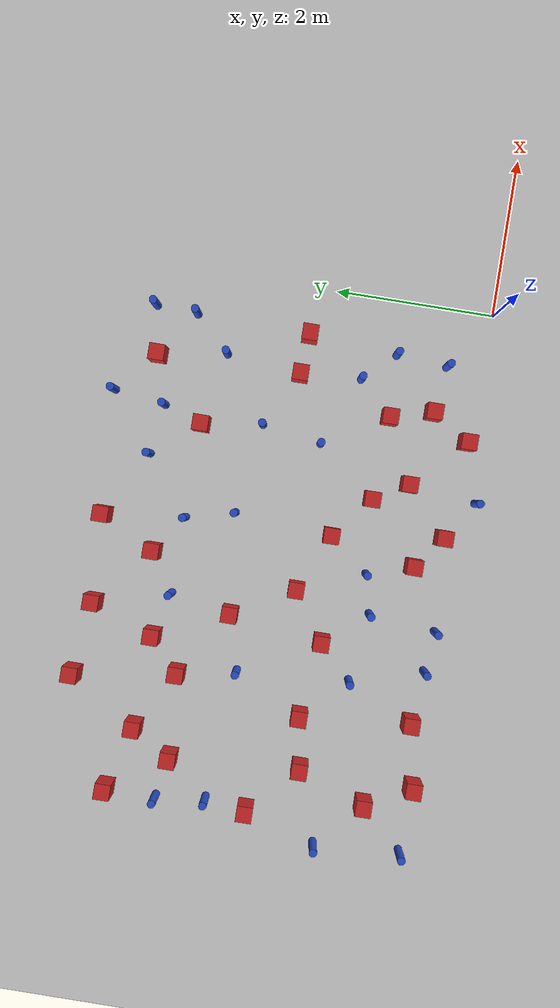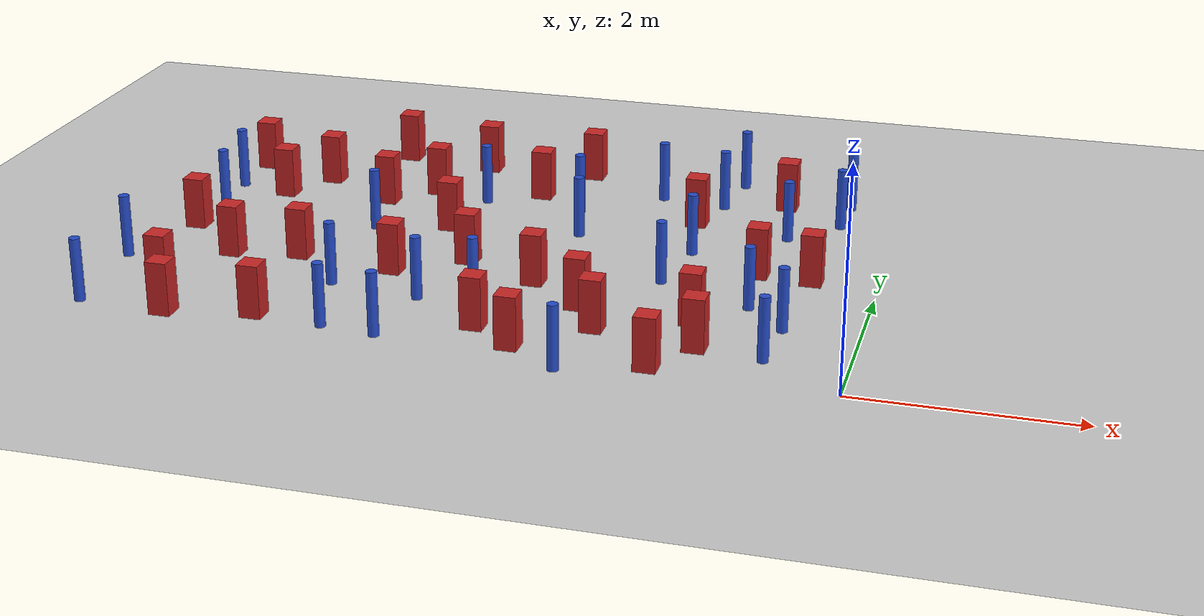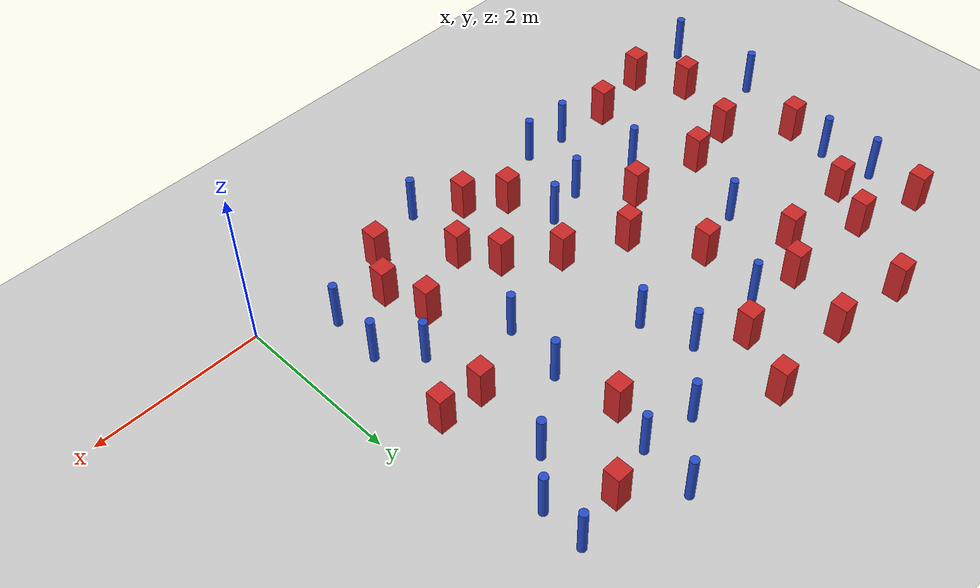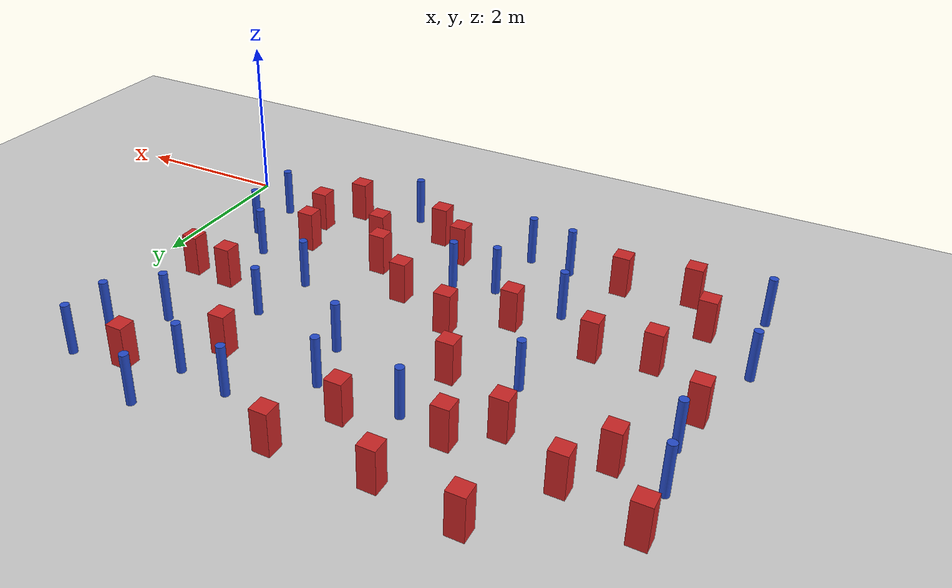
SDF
<sdf version="1.6">
 <world name="default">
  <model name="ground_plane">
   <static>1</static>
   <link name="link">
    <collision name="collision">
     <geometry><plane><normal>0 0 1</normal><size>100 100</size></plane></geometry>
     <surface><friction><ode><mu>100</mu><mu2>50</mu2></ode></friction></surface>
    </collision>
    <visual name="visual">
     <cast_shadows>0</cast_shadows>
     <geometry><plane><normal>0 0 1</normal><size>100 100</size></plane></geometry>
     <material>
      <ambient>1.0 1.0 1.0 1.0</ambient>
      <diffuse>0.8 0.8 0.8 1.0</diffuse>
      <specular>0.01 0.01 0.01 1.000000</specular>
     </material>
    </visual>
   </link>
  </model>
  <model name="square_post_obstacle20">
   <static>true</static>
   <pose>-2.53346879685 1.15611604299 1.91545236811e-07 -7.35059704564e-06 1.12565212e-07 2.39332434364e-05</pose>
   <link name="link">
    <pose>0 0 0.25 0 -0 0</pose>
    <inertial>
     <mass>100</mass>
     <inertia>
      <ixx>0.166667</ixx>
      <ixy>0</ixy>
      <ixz>0</ixz>
      <iyy>0.166667</iyy>
      <iyz>0</iyz>
      <izz>0.166667</izz>
     </inertia>
    </inertial>
    <collision name="collision"><geometry><box><size>.2 .2 .5</size></box></geometry></collision>
    <visual name="visual">
     <geometry><box><size>.2 .2 .5</size></box></geometry>
     <material>
      <script><name>Gazebo/Red</name><uri>file://media/materials/scripts/gazebo.material</uri></script>
     </material>
    </visual>
   </link>
  </model>
  <model name="pole_obstacle17">
   <static>true</static>
   <pose>-4.93952085252 2.49353234793 7.38925637345e-09 -8.47170692798e-08 1.24976764937e-08 -1.74513093023e-07</pose>
   <link name="link">
    <pose>0 0 0.3 0 -0 0</pose>
    <inertial>
     <mass>1</mass>
     <inertia><ixx>0.145833</ixx><ixy>0</ixy><ixz>0</ixz><iyy>0.145833</iyy><iyz>0</iyz><izz>0.125</izz></inertia>
    </inertial>
    <collision name="collision">
     <geometry><cylinder><radius>0.05</radius><length>.6</length></cylinder></geometry>
    </collision>
    <visual name="visual">
     <geometry><cylinder><radius>0.05</radius><length>.6</length></cylinder></geometry>
     <material>
      <script><name>Gazebo/Blue</name><uri>file://media/materials/scripts/gazebo.material</uri></script>
     </material>
    </visual>
   </link>
  </model>
  <model name="pole_obstacle18">
   <static>true</static>
   <pose>-0.682456190744 1.12774905291 7.38925637345e-09 -8.47170692799e-08 1.24976765033e-08 -1.7451309302e-07</pose>
   <link name="link">
    <pose>0 0 0.3 0 -0 0</pose>
    <inertial>
     <mass>1</mass>
     <inertia><ixx>0.145833</ixx><ixy>0</ixy><ixz>0</ixz><iyy>0.145833</iyy><iyz>0</iyz><izz>0.125</izz></inertia>
    </inertial>
    <collision name="collision">
     <geometry><cylinder><radius>0.05</radius><length>.6</length></cylinder></geometry>
    </collision>
    <visual name="visual">
     <geometry><cylinder><radius>0.05</radius><length>.6</length></cylinder></geometry>
     <material>
      <script><name>Gazebo/Blue</name><uri>file://media/materials/scripts/gazebo.material</uri></script>
     </material>
    </visual>
   </link>
  </model>
  <model name="pole_obstacle22">
   <static>true</static>
   <pose>-3.13177858768 3.44141593846 7.38925637345e-09 -8.47170692798e-08 1.24976764939e-08 -1.74513093025e-07</pose>
   <link name="link">
    <pose>0 0 0.3 0 -0 0</pose>
    <inertial>
     <mass>1</mass>
     <inertia><ixx>0.145833</ixx><ixy>0</ixy><ixz>0</ixz><iyy>0.145833</iyy><iyz>0</iyz><izz>0.125</izz></inertia>
    </inertial>
    <collision name="collision">
     <geometry><cylinder><radius>0.05</radius><length>.6</length></cylinder></geometry>
    </collision>
    <visual name="visual">
     <geometry><cylinder><radius>0.05</radius><length>.6</length></cylinder></geometry>
     <material>
      <script><name>Gazebo/Blue</name><uri>file://media/materials/scripts/gazebo.material</uri></script>
     </material>
    </visual>
   </link>
  </model>
  <model name="square_post_obstacle32">
   <static>true</static>
   <pose>-5.28289414419 4.52706465179 1.91545236811e-07 -7.35059704564e-06 1.12565212e-07 2.39332434364e-05</pose>
   <link name="link">
    <pose>0 0 0.25 0 -0 0</pose>
    <inertial>
     <mass>100</mass>
     <inertia>
      <ixx>0.166667</ixx>
      <ixy>0</ixy>
      <ixz>0</ixz>
      <iyy>0.166667</iyy>
      <iyz>0</iyz>
      <izz>0.166667</izz>
     </inertia>
    </inertial>
    <collision name="collision"><geometry><box><size>.2 .2 .5</size></box></geometry></collision>
    <visual name="visual">
     <geometry><box><size>.2 .2 .5</size></box></geometry>
     <material>
      <script><name>Gazebo/Red</name><uri>file://media/materials/scripts/gazebo.material</uri></script>
     </material>
    </visual>
   </link>
  </model>
  <model name="square_post_obstacle34">
   <static>true</static>
   <pose>-6.63710180028 2.10896019173 1.91545236811e-07 -7.35059704564e-06 1.12565212e-07 2.39332434364e-05</pose>
   <link name="link">
    <pose>0 0 0.25 0 -0 0</pose>
    <inertial>
     <mass>100</mass>
     <inertia>
      <ixx>0.166667</ixx>
      <ixy>0</ixy>
      <ixz>0</ixz>
      <iyy>0.166667</iyy>
      <iyz>0</iyz>
      <izz>0.166667</izz>
     </inertia>
    </inertial>
    <collision name="collision"><geometry><box><size>.2 .2 .5</size></box></geometry></collision>
    <visual name="visual">
     <geometry><box><size>.2 .2 .5</size></box></geometry>
     <material>
      <script><name>Gazebo/Red</name><uri>file://media/materials/scripts/gazebo.material</uri></script>
     </material>
    </visual>
   </link>
  </model>
  <model name="square_post_obstacle35">
   <static>true</static>
   <pose>-4.35611774781 4.4059108868 1.91545236811e-07 -7.35059704564e-06 1.12565212e-07 2.39332434364e-05</pose>
   <link name="link">
    <pose>0 0 0.25 0 -0 0</pose>
    <inertial>
     <mass>100</mass>
     <inertia>
      <ixx>0.166667</ixx>
      <ixy>0</ixy>
      <ixz>0</ixz>
      <iyy>0.166667</iyy>
      <iyz>0</iyz>
      <izz>0.166667</izz>
     </inertia>
    </inertial>
    <collision name="collision"><geometry><box><size>.2 .2 .5</size></box></geometry></collision>
    <visual name="visual">
     <geometry><box><size>.2 .2 .5</size></box></geometry>
     <material>
      <script><name>Gazebo/Red</name><uri>file://media/materials/scripts/gazebo.material</uri></script>
     </material>
    </visual>
   </link>
  </model>
  <model name="pole_obstacle37">
   <static>true</static>
   <pose>-1.00970593131 3.24426024718 7.38925637345e-09 -8.47170692799e-08 1.24976765076e-08 -1.74513093016e-07</pose>
   <link name="link">
    <pose>0 0 0.3 0 -0 0</pose>
    <inertial>
     <mass>1</mass>
     <inertia><ixx>0.145833</ixx><ixy>0</ixy><ixz>0</ixz><iyy>0.145833</iyy><iyz>0</iyz><izz>0.125</izz></inertia>
    </inertial>
    <collision name="collision">
     <geometry><cylinder><radius>0.05</radius><length>.6</length></cylinder></geometry>
    </collision>
    <visual name="visual">
     <geometry><cylinder><radius>0.05</radius><length>.6</length></cylinder></geometry>
     <material>
      <script><name>Gazebo/Blue</name><uri>file://media/materials/scripts/gazebo.material</uri></script>
     </material>
    </visual>
   </link>
  </model>
  <model name="square_post_obstacle46">
   <static>true</static>
   <pose>-4.23407613577 2.68764004539 1.91545236811e-07 -7.35059704564e-06 1.12565212e-07 2.39332434364e-05</pose>
   <link name="link">
    <pose>0 0 0.25 0 -0 0</pose>
    <inertial>
     <mass>100</mass>
     <inertia>
      <ixx>0.166667</ixx>
      <ixy>0</ixy>
      <ixz>0</ixz>
      <iyy>0.166667</iyy>
      <iyz>0</iyz>
      <izz>0.166667</izz>
     </inertia>
    </inertial>
    <collision name="collision"><geometry><box><size>.2 .2 .5</size></box></geometry></collision>
    <visual name="visual">
     <geometry><box><size>.2 .2 .5</size></box></geometry>
     <material>
      <script><name>Gazebo/Red</name><uri>file://media/materials/scripts/gazebo.material</uri></script>
     </material>
    </visual>
   </link>
  </model>
  <model name="square_post_obstacle47">
   <static>true</static>
   <pose>-1.11881639431 2.29223987264 1.91545236811e-07 -7.35059704564e-06 1.12565212e-07 2.39332434364e-05</pose>
   <link name="link">
    <pose>0 0 0.25 0 -0 0</pose>
    <inertial>
     <mass>100</mass>
     <inertia>
      <ixx>0.166667</ixx>
      <ixy>0</ixy>
      <ixz>0</ixz>
      <iyy>0.166667</iyy>
      <iyz>0</iyz>
      <izz>0.166667</izz>
     </inertia>
    </inertial>
    <collision name="collision"><geometry><box><size>.2 .2 .5</size></box></geometry></collision>
    <visual name="visual">
     <geometry><box><size>.2 .2 .5</size></box></geometry>
     <material>
      <script><name>Gazebo/Red</name><uri>file://media/materials/scripts/gazebo.material</uri></script>
     </material>
    </visual>
   </link>
  </model>
  <model name="pole_obstacle48">
   <static>true</static>
   <pose>-1.94210592833 1.9028186848 7.38925637345e-09 -8.471706928e-08 1.24976765079e-08 -1.74513093017e-07</pose>
   <link name="link">
    <pose>0 0 0.3 0 -0 0</pose>
    <inertial>
     <mass>1</mass>
     <inertia><ixx>0.145833</ixx><ixy>0</ixy><ixz>0</ixz><iyy>0.145833</iyy><iyz>0</iyz><izz>0.125</izz></inertia>
    </inertial>
    <collision name="collision">
     <geometry><cylinder><radius>0.05</radius><length>.6</length></cylinder></geometry>
    </collision>
    <visual name="visual">
     <geometry><cylinder><radius>0.05</radius><length>.6</length></cylinder></geometry>
     <material>
      <script><name>Gazebo/Blue</name><uri>file://media/materials/scripts/gazebo.material</uri></script>
     </material>
    </visual>
   </link>
  </model>
  <model name="pole_obstacle49">
   <static>true</static>
   <pose>-4.57506021505 0.155829615625 7.38925637345e-09 -8.47170692801e-08 1.24976765186e-08 -1.74513093012e-07</pose>
   <link name="link">
    <pose>0 0 0.3 0 -0 0</pose>
    <inertial>
     <mass>1</mass>
     <inertia><ixx>0.145833</ixx><ixy>0</ixy><ixz>0</ixz><iyy>0.145833</iyy><iyz>0</iyz><izz>0.125</izz></inertia>
    </inertial>
    <collision name="collision">
     <geometry><cylinder><radius>0.05</radius><length>.6</length></cylinder></geometry>
    </collision>
    <visual name="visual">
     <geometry><cylinder><radius>0.05</radius><length>.6</length></cylinder></geometry>
     <material>
      <script><name>Gazebo/Blue</name><uri>file://media/materials/scripts/gazebo.material</uri></script>
     </material>
    </visual>
   </link>
  </model>
  <model name="square_post_obstacle55">
   <static>true</static>
   <pose>-3.24848464306 4.46436800017 1.91545236811e-07 -7.35059704564e-06 1.12565212e-07 2.39332434364e-05</pose>
   <link name="link">
    <pose>0 0 0.25 0 -0 0</pose>
    <inertial>
     <mass>100</mass>
     <inertia>
      <ixx>0.166667</ixx>
      <ixy>0</ixy>
      <ixz>0</ixz>
      <iyy>0.166667</iyy>
      <iyz>0</iyz>
      <izz>0.166667</izz>
     </inertia>
    </inertial>
    <collision name="collision"><geometry><box><size>.2 .2 .5</size></box></geometry></collision>
    <visual name="visual">
     <geometry><box><size>.2 .2 .5</size></box></geometry>
     <material>
      <script><name>Gazebo/Red</name><uri>file://media/materials/scripts/gazebo.material</uri></script>
     </material>
    </visual>
   </link>
  </model>
  <model name="pole_obstacle53">
   <static>true</static>
   <pose>-3.96909244433 0.953721149715 7.38925637345e-09 -8.471706928e-08 1.24976765118e-08 -1.74513093016e-07</pose>
   <link name="link">
    <pose>0 0 0.3 0 -0 0</pose>
    <inertial>
     <mass>1</mass>
     <inertia><ixx>0.145833</ixx><ixy>0</ixy><ixz>0</ixz><iyy>0.145833</iyy><iyz>0</iyz><izz>0.125</izz></inertia>
    </inertial>
    <collision name="collision">
     <geometry><cylinder><radius>0.05</radius><length>.6</length></cylinder></geometry>
    </collision>
    <visual name="visual">
     <geometry><cylinder><radius>0.05</radius><length>.6</length></cylinder></geometry>
     <material>
      <script><name>Gazebo/Blue</name><uri>file://media/materials/scripts/gazebo.material</uri></script>
     </material>
    </visual>
   </link>
  </model>
  <model name="square_post_obstacle64">
   <static>true</static>
   <pose>-1.33243170603 0.567092527574 1.91545236811e-07 -7.35059704564e-06 1.12565212e-07 2.39332434364e-05</pose>
   <link name="link">
    <pose>0 0 0.25 0 -0 0</pose>
    <inertial>
     <mass>100</mass>
     <inertia>
      <ixx>0.166667</ixx>
      <ixy>0</ixy>
      <ixz>0</ixz>
      <iyy>0.166667</iyy>
      <iyz>0</iyz>
      <izz>0.166667</izz>
     </inertia>
    </inertial>
    <collision name="collision"><geometry><box><size>.2 .2 .5</size></box></geometry></collision>
    <visual name="visual">
     <geometry><box><size>.2 .2 .5</size></box></geometry>
     <material>
      <script><name>Gazebo/Red</name><uri>file://media/materials/scripts/gazebo.material</uri></script>
     </material>
    </visual>
   </link>
  </model>
  <model name="square_post_obstacle68">
   <static>true</static>
   <pose>-5.07818489901 3.2295067333 1.91545236811e-07 -7.35059704564e-06 1.12565212e-07 2.39332434364e-05</pose>
   <link name="link">
    <pose>0 0 0.25 0 -0 0</pose>
    <inertial>
     <mass>100</mass>
     <inertia>
      <ixx>0.166667</ixx>
      <ixy>0</ixy>
      <ixz>0</ixz>
      <iyy>0.166667</iyy>
      <iyz>0</iyz>
      <izz>0.166667</izz>
     </inertia>
    </inertial>
    <collision name="collision"><geometry><box><size>.2 .2 .5</size></box></geometry></collision>
    <visual name="visual">
     <geometry><box><size>.2 .2 .5</size></box></geometry>
     <material>
      <script><name>Gazebo/Red</name><uri>file://media/materials/scripts/gazebo.material</uri></script>
     </material>
    </visual>
   </link>
  </model>
  <model name="square_post_obstacle69">
   <static>true</static>
   <pose>-1.63783464503 0.0873400353033 1.91545236811e-07 -7.35059704564e-06 1.12565212e-07 2.39332434364e-05</pose>
   <link name="link">
    <pose>0 0 0.25 0 -0 0</pose>
    <inertial>
     <mass>100</mass>
     <inertia>
      <ixx>0.166667</ixx>
      <ixy>0</ixy>
      <ixz>0</ixz>
      <iyy>0.166667</iyy>
      <iyz>0</iyz>
      <izz>0.166667</izz>
     </inertia>
    </inertial>
    <collision name="collision"><geometry><box><size>.2 .2 .5</size></box></geometry></collision>
    <visual name="visual">
     <geometry><box><size>.2 .2 .5</size></box></geometry>
     <material>
      <script><name>Gazebo/Red</name><uri>file://media/materials/scripts/gazebo.material</uri></script>
     </material>
    </visual>
   </link>
  </model>
  <model name="pole_obstacle72">
   <static>true</static>
   <pose>-6.86662312315 0.108078304101 7.38925637345e-09 -8.47170692799e-08 1.24976765066e-08 -1.74513093016e-07</pose>
   <link name="link">
    <pose>0 0 0.3 0 -0 0</pose>
    <inertial>
     <mass>1</mass>
     <inertia><ixx>0.145833</ixx><ixy>0</ixy><ixz>0</ixz><iyy>0.145833</iyy><iyz>0</iyz><izz>0.125</izz></inertia>
    </inertial>
    <collision name="collision">
     <geometry><cylinder><radius>0.05</radius><length>.6</length></cylinder></geometry>
    </collision>
    <visual name="visual">
     <geometry><cylinder><radius>0.05</radius><length>.6</length></cylinder></geometry>
     <material>
      <script><name>Gazebo/Blue</name><uri>file://media/materials/scripts/gazebo.material</uri></script>
     </material>
    </visual>
   </link>
  </model>
  <model name="pole_obstacle74">
   <static>true</static>
   <pose>-1.05386114238 1.52309149041 7.38925637345e-09 -8.471706928e-08 1.24976765079e-08 -1.74513093017e-07</pose>
   <link name="link">
    <pose>0 0 0.3 0 -0 0</pose>
    <inertial>
     <mass>1</mass>
     <inertia><ixx>0.145833</ixx><ixy>0</ixy><ixz>0</ixz><iyy>0.145833</iyy><iyz>0</iyz><izz>0.125</izz></inertia>
    </inertial>
    <collision name="collision">
     <geometry><cylinder><radius>0.05</radius><length>.6</length></cylinder></geometry>
    </collision>
    <visual name="visual">
     <geometry><cylinder><radius>0.05</radius><length>.6</length></cylinder></geometry>
     <material>
      <script><name>Gazebo/Blue</name><uri>file://media/materials/scripts/gazebo.material</uri></script>
     </material>
    </visual>
   </link>
  </model>
  <model name="square_post_obstacle79">
   <static>true</static>
   <pose>-6.13830337823 3.15770652629 1.91545236811e-07 -7.35059704564e-06 1.12565212e-07 2.39332434364e-05</pose>
   <link name="link">
    <pose>0 0 0.25 0 -0 0</pose>
    <inertial>
     <mass>100</mass>
     <inertia>
      <ixx>0.166667</ixx>
      <ixy>0</ixy>
      <ixz>0</ixz>
      <iyy>0.166667</iyy>
      <iyz>0</iyz>
      <izz>0.166667</izz>
     </inertia>
    </inertial>
    <collision name="collision"><geometry><box><size>.2 .2 .5</size></box></geometry></collision>
    <visual name="visual">
     <geometry><box><size>.2 .2 .5</size></box></geometry>
     <material>
      <script><name>Gazebo/Red</name><uri>file://media/materials/scripts/gazebo.material</uri></script>
     </material>
    </visual>
   </link>
  </model>
  <model name="square_post_obstacle83">
   <static>true</static>
   <pose>-5.234194075 0.23095895668 1.91545236811e-07 -7.35059704564e-06 1.12565212e-07 2.39332434364e-05</pose>
   <link name="link">
    <pose>0 0 0.25 0 -0 0</pose>
    <inertial>
     <mass>100</mass>
     <inertia>
      <ixx>0.166667</ixx>
      <ixy>0</ixy>
      <ixz>0</ixz>
      <iyy>0.166667</iyy>
      <iyz>0</iyz>
      <izz>0.166667</izz>
     </inertia>
    </inertial>
    <collision name="collision"><geometry><box><size>.2 .2 .5</size></box></geometry></collision>
    <visual name="visual">
     <geometry><box><size>.2 .2 .5</size></box></geometry>
     <material>
      <script><name>Gazebo/Red</name><uri>file://media/materials/scripts/gazebo.material</uri></script>
     </material>
    </visual>
   </link>
  </model>
  <model name="pole_obstacle97">
   <static>true</static>
   <pose>-6.5891352139 2.62853449622 7.38925637345e-09 -8.47170692798e-08 1.24976764937e-08 -1.74513093023e-07</pose>
   <link name="link">
    <pose>0 0 0.3 0 -0 0</pose>
    <inertial>
     <mass>1</mass>
     <inertia><ixx>0.145833</ixx><ixy>0</ixy><ixz>0</ixz><iyy>0.145833</iyy><iyz>0</iyz><izz>0.125</izz></inertia>
    </inertial>
    <collision name="collision">
     <geometry><cylinder><radius>0.05</radius><length>.6</length></cylinder></geometry>
    </collision>
    <visual name="visual">
     <geometry><cylinder><radius>0.05</radius><length>.6</length></cylinder></geometry>
     <material>
      <script><name>Gazebo/Blue</name><uri>file://media/materials/scripts/gazebo.material</uri></script>
     </material>
    </visual>
   </link>
  </model>
  <model name="square_post_obstacle88">
   <static>true</static>
   <pose>-3.28575533224 0.50670256834 1.91545236811e-07 -7.35059704564e-06 1.12565212e-07 2.39332434364e-05</pose>
   <link name="link">
    <pose>0 0 0.25 0 -0 0</pose>
    <inertial>
     <mass>100</mass>
     <inertia>
      <ixx>0.166667</ixx>
      <ixy>0</ixy>
      <ixz>0</ixz>
      <iyy>0.166667</iyy>
      <iyz>0</iyz>
      <izz>0.166667</izz>
     </inertia>
    </inertial>
    <collision name="collision"><geometry><box><size>.2 .2 .5</size></box></geometry></collision>
    <visual name="visual">
     <geometry><box><size>.2 .2 .5</size></box></geometry>
     <material>
      <script><name>Gazebo/Red</name><uri>file://media/materials/scripts/gazebo.material</uri></script>
     </material>
    </visual>
   </link>
  </model>
  <model name="square_post_obstacle89">
   <static>true</static>
   <pose>-4.6596145963 3.60649344818 1.91545236811e-07 -7.35059704564e-06 1.12565212e-07 2.39332434364e-05</pose>
   <link name="link">
    <pose>0 0 0.25 0 -0 0</pose>
    <inertial>
     <mass>100</mass>
     <inertia>
      <ixx>0.166667</ixx>
      <ixy>0</ixy>
      <ixz>0</ixz>
      <iyy>0.166667</iyy>
      <iyz>0</iyz>
      <izz>0.166667</izz>
     </inertia>
    </inertial>
    <collision name="collision"><geometry><box><size>.2 .2 .5</size></box></geometry></collision>
    <visual name="visual">
     <geometry><box><size>.2 .2 .5</size></box></geometry>
     <material>
      <script><name>Gazebo/Red</name><uri>file://media/materials/scripts/gazebo.material</uri></script>
     </material>
    </visual>
   </link>
  </model>
  <model name="square_post_obstacle92">
   <static>true</static>
   <pose>-6.64341651959 3.89044273798 1.91545236811e-07 -7.35059704564e-06 1.12565212e-07 2.39332434364e-05</pose>
   <link name="link">
    <pose>0 0 0.25 0 -0 0</pose>
    <inertial>
     <mass>100</mass>
     <inertia>
      <ixx>0.166667</ixx>
      <ixy>0</ixy>
      <ixz>0</ixz>
      <iyy>0.166667</iyy>
      <iyz>0</iyz>
      <izz>0.166667</izz>
     </inertia>
    </inertial>
    <collision name="collision"><geometry><box><size>.2 .2 .5</size></box></geometry></collision>
    <visual name="visual">
     <geometry><box><size>.2 .2 .5</size></box></geometry>
     <material>
      <script><name>Gazebo/Red</name><uri>file://media/materials/scripts/gazebo.material</uri></script>
     </material>
    </visual>
   </link>
  </model>
  <model name="square_post_obstacle96">
   <static>true</static>
   <pose>-1.93669277925 3.42006364348 1.91545236811e-07 -7.35059704564e-06 1.12565212e-07 2.39332434364e-05</pose>
   <link name="link">
    <pose>0 0 0.25 0 -0 0</pose>
    <inertial>
     <mass>100</mass>
     <inertia>
      <ixx>0.166667</ixx>
      <ixy>0</ixy>
      <ixz>0</ixz>
      <iyy>0.166667</iyy>
      <iyz>0</iyz>
      <izz>0.166667</izz>
     </inertia>
    </inertial>
    <collision name="collision"><geometry><box><size>.2 .2 .5</size></box></geometry></collision>
    <visual name="visual">
     <geometry><box><size>.2 .2 .5</size></box></geometry>
     <material>
      <script><name>Gazebo/Red</name><uri>file://media/materials/scripts/gazebo.material</uri></script>
     </material>
    </visual>
   </link>
  </model>
  <model name="square_post_obstacle107">
   <static>true</static>
   <pose>-2.27694664886 0.726159219525 1.91545236811e-07 -7.35059704564e-06 1.12565212e-07 2.39332434364e-05</pose>
   <link name="link">
    <pose>0 0 0.25 0 -0 0</pose>
    <inertial>
     <mass>100</mass>
     <inertia>
      <ixx>0.166667</ixx>
      <ixy>0</ixy>
      <ixz>0</ixz>
      <iyy>0.166667</iyy>
      <iyz>0</iyz>
      <izz>0.166667</izz>
     </inertia>
    </inertial>
    <collision name="collision"><geometry><box><size>.2 .2 .5</size></box></geometry></collision>
    <visual name="visual">
     <geometry><box><size>.2 .2 .5</size></box></geometry>
     <material>
      <script><name>Gazebo/Red</name><uri>file://media/materials/scripts/gazebo.material</uri></script>
     </material>
    </visual>
   </link>
  </model>
  <model name="square_post_obstacle110">
   <static>true</static>
   <pose>-6.02982185728 0.0766127997734 1.91545236811e-07 -7.35059704564e-06 1.12565212e-07 2.39332434364e-05</pose>
   <link name="link">
    <pose>0 0 0.25 0 -0 0</pose>
    <inertial>
     <mass>100</mass>
     <inertia>
      <ixx>0.166667</ixx>
      <ixy>0</ixy>
      <ixz>0</ixz>
      <iyy>0.166667</iyy>
      <iyz>0</iyz>
      <izz>0.166667</izz>
     </inertia>
    </inertial>
    <collision name="collision"><geometry><box><size>.2 .2 .5</size></box></geometry></collision>
    <visual name="visual">
     <geometry><box><size>.2 .2 .5</size></box></geometry>
     <material>
      <script><name>Gazebo/Red</name><uri>file://media/materials/scripts/gazebo.material</uri></script>
     </material>
    </visual>
   </link>
  </model>
  <model name="pole_obstacle123">
   <static>true</static>
   <pose>-2.40675325207 4.01307784485 7.38925637345e-09 -8.47170692799e-08 1.24976765036e-08 -1.74513093019e-07</pose>
   <link name="link">
    <pose>0 0 0.3 0 -0 0</pose>
    <inertial>
     <mass>1</mass>
     <inertia><ixx>0.145833</ixx><ixy>0</ixy><ixz>0</ixz><iyy>0.145833</iyy><iyz>0</iyz><izz>0.125</izz></inertia>
    </inertial>
    <collision name="collision">
     <geometry><cylinder><radius>0.05</radius><length>.6</length></cylinder></geometry>
    </collision>
    <visual name="visual">
     <geometry><cylinder><radius>0.05</radius><length>.6</length></cylinder></geometry>
     <material>
      <script><name>Gazebo/Blue</name><uri>file://media/materials/scripts/gazebo.material</uri></script>
     </material>
    </visual>
   </link>
  </model>
  <model name="square_post_obstacle116">
   <static>true</static>
   <pose>-3.06409306918 1.58717351785 1.91545236811e-07 -7.35059704564e-06 1.12565212e-07 2.39332434364e-05</pose>
   <link name="link">
    <pose>0 0 0.25 0 -0 0</pose>
    <inertial>
     <mass>100</mass>
     <inertia>
      <ixx>0.166667</ixx>
      <ixy>0</ixy>
      <ixz>0</ixz>
      <iyy>0.166667</iyy>
      <iyz>0</iyz>
      <izz>0.166667</izz>
     </inertia>
    </inertial>
    <collision name="collision"><geometry><box><size>.2 .2 .5</size></box></geometry></collision>
    <visual name="visual">
     <geometry><box><size>.2 .2 .5</size></box></geometry>
     <material>
      <script><name>Gazebo/Red</name><uri>file://media/materials/scripts/gazebo.material</uri></script>
     </material>
    </visual>
   </link>
  </model>
  <model name="pole_obstacle137">
   <static>true</static>
   <pose>-0.567891860799 3.69767522945 7.38925637345e-09 -8.47170692799e-08 1.2497676509e-08 -1.74513093016e-07</pose>
   <link name="link">
    <pose>0 0 0.3 0 -0 0</pose>
    <inertial>
     <mass>1</mass>
     <inertia><ixx>0.145833</ixx><ixy>0</ixy><ixz>0</ixz><iyy>0.145833</iyy><iyz>0</iyz><izz>0.125</izz></inertia>
    </inertial>
    <collision name="collision">
     <geometry><cylinder><radius>0.05</radius><length>.6</length></cylinder></geometry>
    </collision>
    <visual name="visual">
     <geometry><cylinder><radius>0.05</radius><length>.6</length></cylinder></geometry>
     <material>
      <script><name>Gazebo/Blue</name><uri>file://media/materials/scripts/gazebo.material</uri></script>
     </material>
    </visual>
   </link>
  </model>
  <model name="pole_obstacle142">
   <static>true</static>
   <pose>-4.05862974588 0.0992475460232 7.38925637345e-09 -8.47170692799e-08 1.24976765066e-08 -1.74513093016e-07</pose>
   <link name="link">
    <pose>0 0 0.3 0 -0 0</pose>
    <inertial>
     <mass>1</mass>
     <inertia><ixx>0.145833</ixx><ixy>0</ixy><ixz>0</ixz><iyy>0.145833</iyy><iyz>0</iyz><izz>0.125</izz></inertia>
    </inertial>
    <collision name="collision">
     <geometry><cylinder><radius>0.05</radius><length>.6</length></cylinder></geometry>
    </collision>
    <visual name="visual">
     <geometry><cylinder><radius>0.05</radius><length>.6</length></cylinder></geometry>
     <material>
      <script><name>Gazebo/Blue</name><uri>file://media/materials/scripts/gazebo.material</uri></script>
     </material>
    </visual>
   </link>
  </model>
  <model name="pole_obstacle143">
   <static>true</static>
   <pose>-4.83732899535 1.0761681224 7.38925637345e-09 -8.471706928e-08 1.24976765134e-08 -1.74513093015e-07</pose>
   <link name="link">
    <pose>0 0 0.3 0 -0 0</pose>
    <inertial>
     <mass>1</mass>
     <inertia><ixx>0.145833</ixx><ixy>0</ixy><ixz>0</ixz><iyy>0.145833</iyy><iyz>0</iyz><izz>0.125</izz></inertia>
    </inertial>
    <collision name="collision">
     <geometry><cylinder><radius>0.05</radius><length>.6</length></cylinder></geometry>
    </collision>
    <visual name="visual">
     <geometry><cylinder><radius>0.05</radius><length>.6</length></cylinder></geometry>
     <material>
      <script><name>Gazebo/Blue</name><uri>file://media/materials/scripts/gazebo.material</uri></script>
     </material>
    </visual>
   </link>
  </model>
  <model name="pole_obstacle144">
   <static>true</static>
   <pose>-4.10587449074 3.46260440766 7.38925637345e-09 -8.47170692798e-08 1.24976764937e-08 -1.74513093023e-07</pose>
   <link name="link">
    <pose>0 0 0.3 0 -0 0</pose>
    <inertial>
     <mass>1</mass>
     <inertia><ixx>0.145833</ixx><ixy>0</ixy><ixz>0</ixz><iyy>0.145833</iyy><iyz>0</iyz><izz>0.125</izz></inertia>
    </inertial>
    <collision name="collision">
     <geometry><cylinder><radius>0.05</radius><length>.6</length></cylinder></geometry>
    </collision>
    <visual name="visual">
     <geometry><cylinder><radius>0.05</radius><length>.6</length></cylinder></geometry>
     <material>
      <script><name>Gazebo/Blue</name><uri>file://media/materials/scripts/gazebo.material</uri></script>
     </material>
    </visual>
   </link>
  </model>
  <model name="square_post_obstacle134">
   <static>true</static>
   <pose>-1.1579842243 4.09452147222 1.91545236811e-07 -7.35059704564e-06 1.12565212e-07 2.39332434364e-05</pose>
   <link name="link">
    <pose>0 0 0.25 0 -0 0</pose>
    <inertial>
     <mass>100</mass>
     <inertia>
      <ixx>0.166667</ixx>
      <ixy>0</ixy>
      <ixz>0</ixz>
      <iyy>0.166667</iyy>
      <iyz>0</iyz>
      <izz>0.166667</izz>
     </inertia>
    </inertial>
    <collision name="collision"><geometry><box><size>.2 .2 .5</size></box></geometry></collision>
    <visual name="visual">
     <geometry><box><size>.2 .2 .5</size></box></geometry>
     <material>
      <script><name>Gazebo/Red</name><uri>file://media/materials/scripts/gazebo.material</uri></script>
     </material>
    </visual>
   </link>
  </model>
  <model name="square_post_obstacle140">
   <static>true</static>
   <pose>-3.8017158588 1.91587657523 1.91545236811e-07 -7.35059704564e-06 1.12565212e-07 2.39332434364e-05</pose>
   <link name="link">
    <pose>0 0 0.25 0 -0 0</pose>
    <inertial>
     <mass>100</mass>
     <inertia>
      <ixx>0.166667</ixx>
      <ixy>0</ixy>
      <ixz>0</ixz>
      <iyy>0.166667</iyy>
      <iyz>0</iyz>
      <izz>0.166667</izz>
     </inertia>
    </inertial>
    <collision name="collision"><geometry><box><size>.2 .2 .5</size></box></geometry></collision>
    <visual name="visual">
     <geometry><box><size>.2 .2 .5</size></box></geometry>
     <material>
      <script><name>Gazebo/Red</name><uri>file://media/materials/scripts/gazebo.material</uri></script>
     </material>
    </visual>
   </link>
  </model>
  <model name="square_post_obstacle141">
   <static>true</static>
   <pose>-6.01268056446 1.51866579369 1.91545236811e-07 -7.35059704564e-06 1.12565212e-07 2.39332434364e-05</pose>
   <link name="link">
    <pose>0 0 0.25 0 -0 0</pose>
    <inertial>
     <mass>100</mass>
     <inertia>
      <ixx>0.166667</ixx>
      <ixy>0</ixy>
      <ixz>0</ixz>
      <iyy>0.166667</iyy>
      <iyz>0</iyz>
      <izz>0.166667</izz>
     </inertia>
    </inertial>
    <collision name="collision"><geometry><box><size>.2 .2 .5</size></box></geometry></collision>
    <visual name="visual">
     <geometry><box><size>.2 .2 .5</size></box></geometry>
     <material>
      <script><name>Gazebo/Red</name><uri>file://media/materials/scripts/gazebo.material</uri></script>
     </material>
    </visual>
   </link>
  </model>
  <model name="pole_obstacle154">
   <static>true</static>
   <pose>-6.94149807627 1.19659354682 7.38925637345e-09 -8.471706928e-08 1.24976765134e-08 -1.74513093015e-07</pose>
   <link name="link">
    <pose>0 0 0.3 0 -0 0</pose>
    <inertial>
     <mass>1</mass>
     <inertia><ixx>0.145833</ixx><ixy>0</ixy><ixz>0</ixz><iyy>0.145833</iyy><iyz>0</iyz><izz>0.125</izz></inertia>
    </inertial>
    <collision name="collision">
     <geometry><cylinder><radius>0.05</radius><length>.6</length></cylinder></geometry>
    </collision>
    <visual name="visual">
     <geometry><cylinder><radius>0.05</radius><length>.6</length></cylinder></geometry>
     <material>
      <script><name>Gazebo/Blue</name><uri>file://media/materials/scripts/gazebo.material</uri></script>
     </material>
    </visual>
   </link>
  </model>
  <model name="square_post_obstacle148">
   <static>true</static>
   <pose>-5.36932568658 1.62593116508 1.91545236811e-07 -7.35059704564e-06 1.12565212e-07 2.39332434364e-05</pose>
   <link name="link">
    <pose>0 0 0.25 0 -0 0</pose>
    <inertial>
     <mass>100</mass>
     <inertia>
      <ixx>0.166667</ixx>
      <ixy>0</ixy>
      <ixz>0</ixz>
      <iyy>0.166667</iyy>
      <iyz>0</iyz>
      <izz>0.166667</izz>
     </inertia>
    </inertial>
    <collision name="collision"><geometry><box><size>.2 .2 .5</size></box></geometry></collision>
    <visual name="visual">
     <geometry><box><size>.2 .2 .5</size></box></geometry>
     <material>
      <script><name>Gazebo/Red</name><uri>file://media/materials/scripts/gazebo.material</uri></script>
     </material>
    </visual>
   </link>
  </model>
  <model name="pole_obstacle160">
   <static>true</static>
   <pose>-6.666383976 3.25517891501 7.38925637345e-09 -8.47170692798e-08 1.24976764937e-08 -1.74513093023e-07</pose>
   <link name="link">
    <pose>0 0 0.3 0 -0 0</pose>
    <inertial>
     <mass>1</mass>
     <inertia><ixx>0.145833</ixx><ixy>0</ixy><ixz>0</ixz><iyy>0.145833</iyy><iyz>0</iyz><izz>0.125</izz></inertia>
    </inertial>
    <collision name="collision">
     <geometry><cylinder><radius>0.05</radius><length>.6</length></cylinder></geometry>
    </collision>
    <visual name="visual">
     <geometry><cylinder><radius>0.05</radius><length>.6</length></cylinder></geometry>
     <material>
      <script><name>Gazebo/Blue</name><uri>file://media/materials/scripts/gazebo.material</uri></script>
     </material>
    </visual>
   </link>
  </model>
  <model name="pole_obstacle162">
   <static>true</static>
   <pose>-0.540206560669 4.22453710434 7.38925637345e-09 -8.471706928e-08 1.24976765117e-08 -1.74513093013e-07</pose>
   <link name="link">
    <pose>0 0 0.3 0 -0 0</pose>
    <inertial>
     <mass>1</mass>
     <inertia><ixx>0.145833</ixx><ixy>0</ixy><ixz>0</ixz><iyy>0.145833</iyy><iyz>0</iyz><izz>0.125</izz></inertia>
    </inertial>
    <collision name="collision">
     <geometry><cylinder><radius>0.05</radius><length>.6</length></cylinder></geometry>
    </collision>
    <visual name="visual">
     <geometry><cylinder><radius>0.05</radius><length>.6</length></cylinder></geometry>
     <material>
      <script><name>Gazebo/Blue</name><uri>file://media/materials/scripts/gazebo.material</uri></script>
     </material>
    </visual>
   </link>
  </model>
  <model name="square_post_obstacle155">
   <static>true</static>
   <pose>-1.47741962503 1.09994303589 1.91545236811e-07 -7.35059704564e-06 1.12565212e-07 2.39332434364e-05</pose>
   <link name="link">
    <pose>0 0 0.25 0 -0 0</pose>
    <inertial>
     <mass>100</mass>
     <inertia>
      <ixx>0.166667</ixx>
      <ixy>0</ixy>
      <ixz>0</ixz>
      <iyy>0.166667</iyy>
      <iyz>0</iyz>
      <izz>0.166667</izz>
     </inertia>
    </inertial>
    <collision name="collision"><geometry><box><size>.2 .2 .5</size></box></geometry></collision>
    <visual name="visual">
     <geometry><box><size>.2 .2 .5</size></box></geometry>
     <material>
      <script><name>Gazebo/Red</name><uri>file://media/materials/scripts/gazebo.material</uri></script>
     </material>
    </visual>
   </link>
  </model>
  <model name="square_post_obstacle156">
   <static>true</static>
   <pose>-0.611361582085 2.2517346029 1.91545236811e-07 -7.35059704564e-06 1.12565212e-07 2.39332434364e-05</pose>
   <link name="link">
    <pose>0 0 0.25 0 -0 0</pose>
    <inertial>
     <mass>100</mass>
     <inertia>
      <ixx>0.166667</ixx>
      <ixy>0</ixy>
      <ixz>0</ixz>
      <iyy>0.166667</iyy>
      <iyz>0</iyz>
      <izz>0.166667</izz>
     </inertia>
    </inertial>
    <collision name="collision"><geometry><box><size>.2 .2 .5</size></box></geometry></collision>
    <visual name="visual">
     <geometry><box><size>.2 .2 .5</size></box></geometry>
     <material>
      <script><name>Gazebo/Red</name><uri>file://media/materials/scripts/gazebo.material</uri></script>
     </material>
    </visual>
   </link>
  </model>
  <model name="pole_obstacle164">
   <static>true</static>
   <pose>-1.76814550808 3.92365668608 7.38925637345e-09 -8.47170692799e-08 1.24976765053e-08 -1.74513093017e-07</pose>
   <link name="link">
    <pose>0 0 0.3 0 -0 0</pose>
    <inertial>
     <mass>1</mass>
     <inertia><ixx>0.145833</ixx><ixy>0</ixy><ixz>0</ixz><iyy>0.145833</iyy><iyz>0</iyz><izz>0.125</izz></inertia>
    </inertial>
    <collision name="collision">
     <geometry><cylinder><radius>0.05</radius><length>.6</length></cylinder></geometry>
    </collision>
    <visual name="visual">
     <geometry><cylinder><radius>0.05</radius><length>.6</length></cylinder></geometry>
     <material>
      <script><name>Gazebo/Blue</name><uri>file://media/materials/scripts/gazebo.material</uri></script>
     </material>
    </visual>
   </link>
  </model>
  <model name="pole_obstacle165">
   <static>true</static>
   <pose>-0.729149738755 0.478197789835 7.38925637345e-09 -8.471706928e-08 1.24976765086e-08 -1.74513093015e-07</pose>
   <link name="link">
    <pose>0 0 0.3 0 -0 0</pose>
    <inertial>
     <mass>1</mass>
     <inertia><ixx>0.145833</ixx><ixy>0</ixy><ixz>0</ixz><iyy>0.145833</iyy><iyz>0</iyz><izz>0.125</izz></inertia>
    </inertial>
    <collision name="collision">
     <geometry><cylinder><radius>0.05</radius><length>.6</length></cylinder></geometry>
    </collision>
    <visual name="visual">
     <geometry><cylinder><radius>0.05</radius><length>.6</length></cylinder></geometry>
     <material>
      <script><name>Gazebo/Blue</name><uri>file://media/materials/scripts/gazebo.material</uri></script>
     </material>
    </visual>
   </link>
  </model>
  <model name="pole_obstacle166">
   <static>true</static>
   <pose>-1.67798075668 4.57689154721 7.38925637345e-09 -8.47170692799e-08 1.24976765033e-08 -1.74513093018e-07</pose>
   <link name="link">
    <pose>0 0 0.3 0 -0 0</pose>
    <inertial>
     <mass>1</mass>
     <inertia><ixx>0.145833</ixx><ixy>0</ixy><ixz>0</ixz><iyy>0.145833</iyy><iyz>0</iyz><izz>0.125</izz></inertia>
    </inertial>
    <collision name="collision">
     <geometry><cylinder><radius>0.05</radius><length>.6</length></cylinder></geometry>
    </collision>
    <visual name="visual">
     <geometry><cylinder><radius>0.05</radius><length>.6</length></cylinder></geometry>
     <material>
      <script><name>Gazebo/Blue</name><uri>file://media/materials/scripts/gazebo.material</uri></script>
     </material>
    </visual>
   </link>
  </model>
  <model name="square_post_obstacle166">
   <static>true</static>
   <pose>-3.60623231472 3.77099770036 1.91545236811e-07 -7.35059704564e-06 1.12565212e-07 2.39332434364e-05</pose>
   <link name="link">
    <pose>0 0 0.25 0 -0 0</pose>
    <inertial>
     <mass>100</mass>
     <inertia>
      <ixx>0.166667</ixx>
      <ixy>0</ixy>
      <ixz>0</ixz>
      <iyy>0.166667</iyy>
      <iyz>0</iyz>
      <izz>0.166667</izz>
     </inertia>
    </inertial>
    <collision name="collision"><geometry><box><size>.2 .2 .5</size></box></geometry></collision>
    <visual name="visual">
     <geometry><box><size>.2 .2 .5</size></box></geometry>
     <material>
      <script><name>Gazebo/Red</name><uri>file://media/materials/scripts/gazebo.material</uri></script>
     </material>
    </visual>
   </link>
  </model>
  <model name="square_post_obstacle169">
   <static>true</static>
   <pose>-6.33558718581 0.658291682107 1.91545236811e-07 -7.35059704564e-06 1.12565212e-07 2.39332434364e-05</pose>
   <link name="link">
    <pose>0 0 0.25 0 -0 0</pose>
    <inertial>
     <mass>100</mass>
     <inertia>
      <ixx>0.166667</ixx>
      <ixy>0</ixy>
      <ixz>0</ixz>
      <iyy>0.166667</iyy>
      <iyz>0</iyz>
      <izz>0.166667</izz>
     </inertia>
    </inertial>
    <collision name="collision"><geometry><box><size>.2 .2 .5</size></box></geometry></collision>
    <visual name="visual">
     <geometry><box><size>.2 .2 .5</size></box></geometry>
     <material>
      <script><name>Gazebo/Red</name><uri>file://media/materials/scripts/gazebo.material</uri></script>
     </material>
    </visual>
   </link>
  </model>
  <model name="pole_obstacle184">
   <static>true</static>
   <pose>-2.97252483459 2.82551582353 7.38925637345e-09 -8.47170692798e-08 1.24976764939e-08 -1.74513093025e-07</pose>
   <link name="link">
    <pose>0 0 0.3 0 -0 0</pose>
    <inertial>
     <mass>1</mass>
     <inertia><ixx>0.145833</ixx><ixy>0</ixy><ixz>0</ixz><iyy>0.145833</iyy><iyz>0</iyz><izz>0.125</izz></inertia>
    </inertial>
    <collision name="collision">
     <geometry><cylinder><radius>0.05</radius><length>.6</length></cylinder></geometry>
    </collision>
    <visual name="visual">
     <geometry><cylinder><radius>0.05</radius><length>.6</length></cylinder></geometry>
     <material>
      <script><name>Gazebo/Blue</name><uri>file://media/materials/scripts/gazebo.material</uri></script>
     </material>
    </visual>
   </link>
  </model>
  <model name="pole_obstacle185">
   <static>true</static>
   <pose>-2.37883687853 -0.150243936989 7.38925637345e-09 -8.471706928e-08 1.24976765208e-08 -1.7451309301e-07</pose>
   <link name="link">
    <pose>0 0 0.3 0 -0 0</pose>
    <inertial>
     <mass>1</mass>
     <inertia><ixx>0.145833</ixx><ixy>0</ixy><ixz>0</ixz><iyy>0.145833</iyy><iyz>0</iyz><izz>0.125</izz></inertia>
    </inertial>
    <collision name="collision">
     <geometry><cylinder><radius>0.05</radius><length>.6</length></cylinder></geometry>
    </collision>
    <visual name="visual">
     <geometry><cylinder><radius>0.05</radius><length>.6</length></cylinder></geometry>
     <material>
      <script><name>Gazebo/Blue</name><uri>file://media/materials/scripts/gazebo.material</uri></script>
     </material>
    </visual>
   </link>
  </model>
  <model name="square_post_obstacle174">
   <static>true</static>
   <pose>-5.8285940283 3.65669186847 1.91545236811e-07 -7.35059704564e-06 1.12565212e-07 2.39332434364e-05</pose>
   <link name="link">
    <pose>0 0 0.25 0 -0 0</pose>
    <inertial>
     <mass>100</mass>
     <inertia>
      <ixx>0.166667</ixx>
      <ixy>0</ixy>
      <ixz>0</ixz>
      <iyy>0.166667</iyy>
      <iyz>0</iyz>
      <izz>0.166667</izz>
     </inertia>
    </inertial>
    <collision name="collision"><geometry><box><size>.2 .2 .5</size></box></geometry></collision>
    <visual name="visual">
     <geometry><box><size>.2 .2 .5</size></box></geometry>
     <material>
      <script><name>Gazebo/Red</name><uri>file://media/materials/scripts/gazebo.material</uri></script>
     </material>
    </visual>
   </link>
  </model>
  <model name="square_post_obstacle180">
   <static>true</static>
   <pose>-4.40674760187 1.50005088681 1.91545236811e-07 -7.35059704564e-06 1.12565212e-07 2.39332434364e-05</pose>
   <link name="link">
    <pose>0 0 0.25 0 -0 0</pose>
    <inertial>
     <mass>100</mass>
     <inertia>
      <ixx>0.166667</ixx>
      <ixy>0</ixy>
      <ixz>0</ixz>
      <iyy>0.166667</iyy>
      <iyz>0</iyz>
      <izz>0.166667</izz>
     </inertia>
    </inertial>
    <collision name="collision"><geometry><box><size>.2 .2 .5</size></box></geometry></collision>
    <visual name="visual">
     <geometry><box><size>.2 .2 .5</size></box></geometry>
     <material>
      <script><name>Gazebo/Red</name><uri>file://media/materials/scripts/gazebo.material</uri></script>
     </material>
    </visual>
   </link>
  </model>
  <model name="square_post_obstacle182">
   <static>true</static>
   <pose>-2.87287552988 0.191236399842 1.91545236811e-07 -7.35059704564e-06 1.12565212e-07 2.39332434364e-05</pose>
   <link name="link">
    <pose>0 0 0.25 0 -0 0</pose>
    <inertial>
     <mass>100</mass>
     <inertia>
      <ixx>0.166667</ixx>
      <ixy>0</ixy>
      <ixz>0</ixz>
      <iyy>0.166667</iyy>
      <iyz>0</iyz>
      <izz>0.166667</izz>
     </inertia>
    </inertial>
    <collision name="collision"><geometry><box><size>.2 .2 .5</size></box></geometry></collision>
    <visual name="visual">
     <geometry><box><size>.2 .2 .5</size></box></geometry>
     <material>
      <script><name>Gazebo/Red</name><uri>file://media/materials/scripts/gazebo.material</uri></script>
     </material>
    </visual>
   </link>
  </model>
  <model name="pole_obstacle189">
   <static>true</static>
   <pose>-1.81981113952 2.65959210226 7.38925637345e-09 -8.47170692799e-08 1.24976765053e-08 -1.74513093017e-07</pose>
   <link name="link">
    <pose>0 0 0.3 0 -0 0</pose>
    <inertial>
     <mass>1</mass>
     <inertia><ixx>0.145833</ixx><ixy>0</ixy><ixz>0</ixz><iyy>0.145833</iyy><iyz>0</iyz><izz>0.125</izz></inertia>
    </inertial>
    <collision name="collision">
     <geometry><cylinder><radius>0.05</radius><length>.6</length></cylinder></geometry>
    </collision>
    <visual name="visual">
     <geometry><cylinder><radius>0.05</radius><length>.6</length></cylinder></geometry>
     <material>
      <script><name>Gazebo/Blue</name><uri>file://media/materials/scripts/gazebo.material</uri></script>
     </material>
    </visual>
   </link>
  </model>
  <model name="pole_obstacle196">
   <static>true</static>
   <pose>-3.47393333754 1.07580769076 7.38925637345e-09 -8.47170692796e-08 1.24976764713e-08 -1.74513093037e-07</pose>
   <link name="link">
    <pose>0 0 0.3 0 -0 0</pose>
    <inertial>
     <mass>1</mass>
     <inertia><ixx>0.145833</ixx><ixy>0</ixy><ixz>0</ixz><iyy>0.145833</iyy><iyz>0</iyz><izz>0.125</izz></inertia>
    </inertial>
    <collision name="collision">
     <geometry><cylinder><radius>0.05</radius><length>.6</length></cylinder></geometry>
    </collision>
    <visual name="visual">
     <geometry><cylinder><radius>0.05</radius><length>.6</length></cylinder></geometry>
     <material>
      <script><name>Gazebo/Blue</name><uri>file://media/materials/scripts/gazebo.material</uri></script>
     </material>
    </visual>
   </link>
  </model>
 </world>
</sdf>
